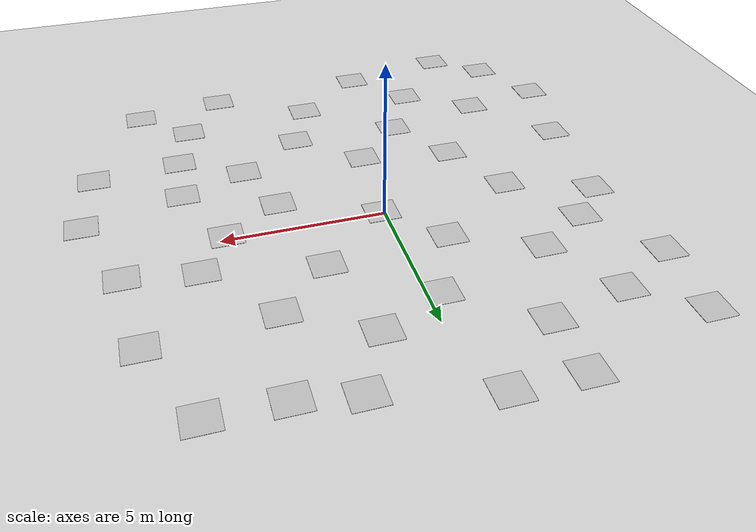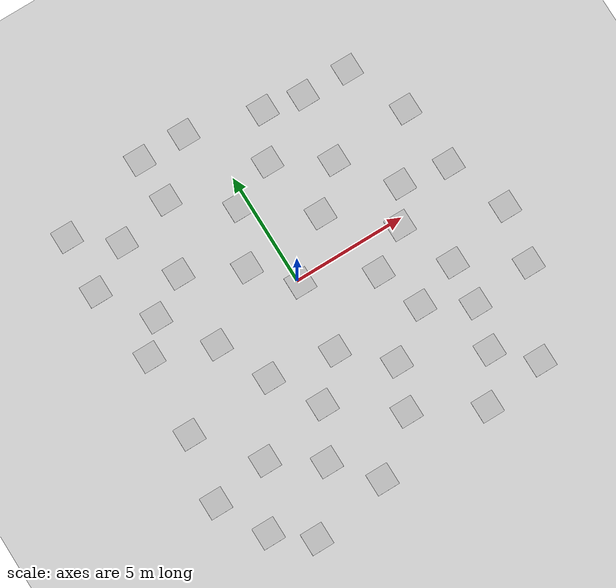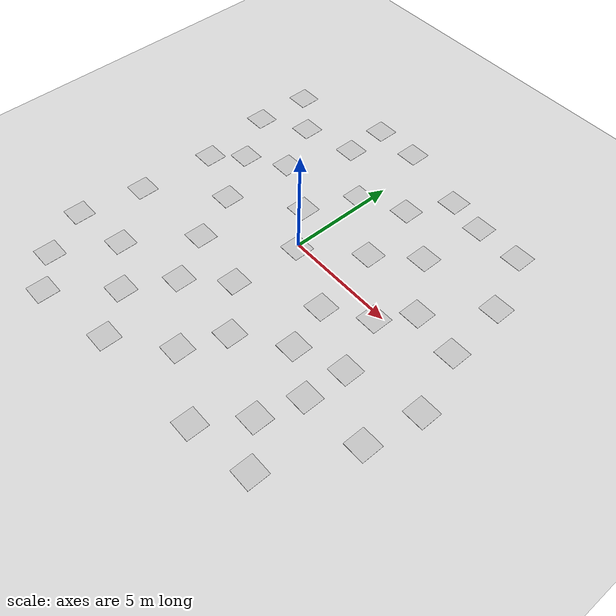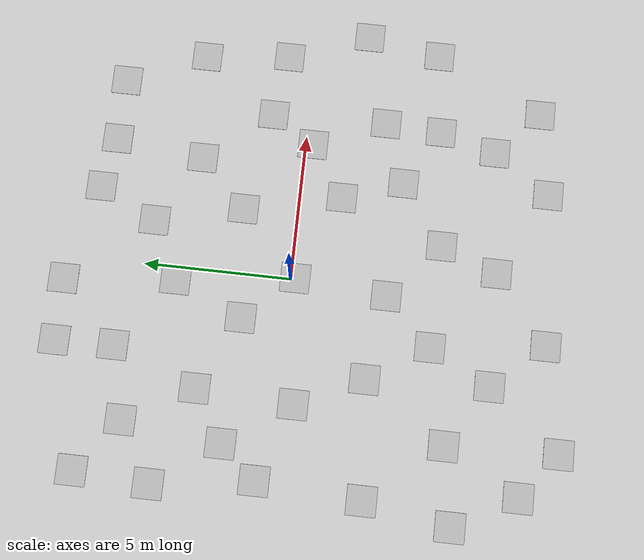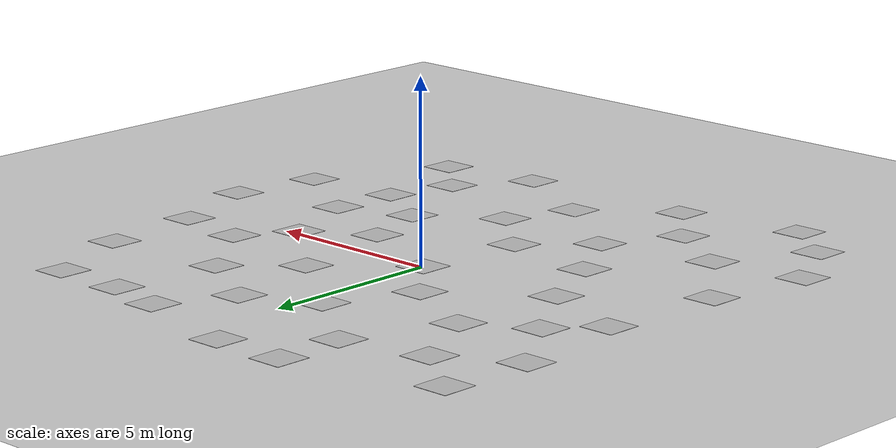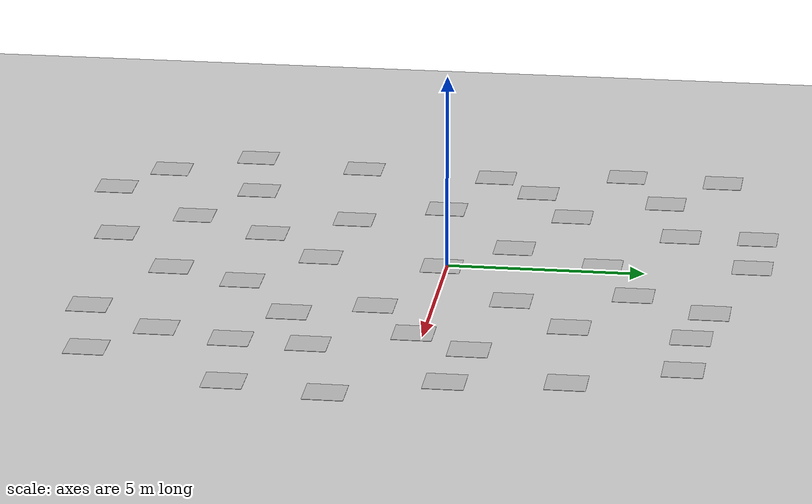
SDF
<sdf version="1.6">
 <world name="default">
  <light name="sun" type="directional">
   <pose>0 0 10 0 -0 0</pose>
   <diffuse>0.8 0.8 0.8 1</diffuse>
   <specular>0.1 0.1 0.1 1</specular>
   <attenuation>
    <range>1000</range>
    <constant>0.9</constant>
    <linear>0.01</linear>
    <quadratic>0.001</quadratic>
   </attenuation>
   <direction>-0.5 0.5 -1</direction>
  </light>
  <model name="ground_plane">
   <static>1</static>
   <link name="link">
    <collision name="collision">
     <geometry><plane><normal>0 0 1</normal><size>100 100</size></plane></geometry>
     <surface><friction><ode><mu>100</mu><mu2>50</mu2></ode></friction></surface>
    </collision>
    <visual name="visual">
     <cast_shadows>0</cast_shadows>
     <geometry><plane><normal>0 0 1</normal><size>100 100</size></plane></geometry>
     <material>
      <script><uri>file://media/materials/scripts/gazebo.material</uri><name>Gazebo/Grey</name></script>
     </material>
    </visual>
   </link>
  </model>
  <gravity>0 0 -9.8</gravity>
  <magnetic_field>6e-06 2.3e-05 -4.2e-05</magnetic_field>
  <atmosphere type="adiabatic"/>
  <physics name="default_physics" default="0" type="ode">
   <max_step_size>0.001</max_step_size>
   <real_time_factor>1</real_time_factor>
   <real_time_update_rate>1000</real_time_update_rate>
  </physics>
  <scene><ambient>0.4 0.4 0.4 1</ambient><background>0.7 0.7 0.7 1</background><shadows>1</shadows></scene>
  <spherical_coordinates>
   <surface_model>EARTH_WGS84</surface_model>
   <latitude_deg>0</latitude_deg>
   <longitude_deg>0</longitude_deg>
   <elevation>0</elevation>
   <heading_deg>0</heading_deg>
  </spherical_coordinates>
  <model name="april_tag0">
   <static>1</static>
   <link name="plane">
    <visual name="april_tag_texture">
     <geometry><box><size>1 1 0.01</size></box></geometry>
     <material>
      <script>
       <uri>model://april_tag0/materials/scripts</uri>
       <uri>model://april_tag0/materials/textures</uri>
       <name>AprilTag/M0</name>
      </script>
     </material>
    </visual>
   </link>
   <pose>0.064587 -0.136703 0 0 -0 0</pose>
  </model>
  <model name="april_tag1">
   <static>1</static>
   <link name="plane">
    <visual name="april_tag_texture">
     <geometry><box><size>1 1 0.01</size></box></geometry>
     <material>
      <script>
       <uri>model://april_tag1/materials/scripts</uri>
       <uri>model://april_tag1/materials/textures</uri>
       <name>AprilTag/M1</name>
      </script>
     </material>
    </visual>
   </link>
   <pose>-3.97469 2.78807 0 0 -0 0</pose>
  </model>
  <model name="april_tag10">
   <static>1</static>
   <link name="plane">
    <visual name="april_tag_texture">
     <geometry><box><size>1 1 0.01</size></box></geometry>
     <material>
      <script>
       <uri>model://april_tag10/materials/scripts</uri>
       <uri>model://april_tag10/materials/textures</uri>
       <name>AprilTag/M10</name>
      </script>
     </material>
    </visual>
   </link>
   <pose>-4.16575 -0.526798 0 0 -0 0</pose>
  </model>
  <model name="april_tag100">
   <static>1</static>
   <link name="plane">
    <visual name="april_tag_texture">
     <geometry><box><size>1 1 0.01</size></box></geometry>
     <material>
      <script>
       <uri>model://april_tag100/materials/scripts</uri>
       <uri>model://april_tag100/materials/textures</uri>
       <name>AprilTag/M100</name>
      </script>
     </material>
    </visual>
   </link>
   <pose>-0.416114 3.88667 0 0 -0 0</pose>
  </model>
  <model name="april_tag101">
   <static>1</static>
   <link name="plane">
    <visual name="april_tag_texture">
     <geometry><box><size>1 1 0.01</size></box></geometry>
     <material>
      <script>
       <uri>model://april_tag101/materials/scripts</uri>
       <uri>model://april_tag101/materials/textures</uri>
       <name>AprilTag/M101</name>
      </script>
     </material>
    </visual>
   </link>
   <pose>3.91276 3.48285 0 0 -0 0</pose>
  </model>
  <model name="april_tag102">
   <static>1</static>
   <link name="plane">
    <visual name="april_tag_texture">
     <geometry><box><size>1 1 0.01</size></box></geometry>
     <material>
      <script>
       <uri>model://april_tag102/materials/scripts</uri>
       <uri>model://april_tag102/materials/textures</uri>
       <name>AprilTag/M102</name>
      </script>
     </material>
    </visual>
   </link>
   <pose>4.78359 -0.24416 0 0 -0 0</pose>
  </model>
  <model name="april_tag103">
   <static>1</static>
   <link name="plane">
    <visual name="april_tag_texture">
     <geometry><box><size>1 1 0.01</size></box></geometry>
     <material>
      <script>
       <uri>model://april_tag103/materials/scripts</uri>
       <uri>model://april_tag103/materials/textures</uri>
       <name>AprilTag/M103</name>
      </script>
     </material>
    </visual>
   </link>
   <pose>-3.08026 -2.80327 0 0 -0 0</pose>
  </model>
  <model name="april_tag104">
   <static>1</static>
   <link name="plane">
    <visual name="april_tag_texture">
     <geometry><box><size>1 1 0.01</size></box></geometry>
     <material>
      <script>
       <uri>model://april_tag104/materials/scripts</uri>
       <uri>model://april_tag104/materials/textures</uri>
       <name>AprilTag/M104</name>
      </script>
     </material>
    </visual>
   </link>
   <pose>-0.215927 -3.2605 0 0 -0 0</pose>
  </model>
  <model name="april_tag105">
   <static>1</static>
   <link name="plane">
    <visual name="april_tag_texture">
     <geometry><box><size>1 1 0.01</size></box></geometry>
     <material>
      <script>
       <uri>model://april_tag105/materials/scripts</uri>
       <uri>model://april_tag105/materials/textures</uri>
       <name>AprilTag/M105</name>
      </script>
     </material>
    </visual>
   </link>
   <pose>3.73687 -3.47963 0 0 -0 0</pose>
  </model>
  <model name="april_tag106">
   <static>1</static>
   <link name="plane">
    <visual name="april_tag_texture">
     <geometry><box><size>1 1 0.01</size></box></geometry>
     <material>
      <script>
       <uri>model://april_tag106/materials/scripts</uri>
       <uri>model://april_tag106/materials/textures</uri>
       <name>AprilTag/M106</name>
      </script>
     </material>
    </visual>
   </link>
   <pose>-2.87254 7.66944 0 0 -0 0</pose>
  </model>
  <model name="april_tag107">
   <static>1</static>
   <link name="plane">
    <visual name="april_tag_texture">
     <geometry><box><size>1 1 0.01</size></box></geometry>
     <material>
      <script>
       <uri>model://april_tag107/materials/scripts</uri>
       <uri>model://april_tag107/materials/textures</uri>
       <name>AprilTag/M107</name>
      </script>
     </material>
    </visual>
   </link>
   <pose>-7.07158 6.47948 0 0 -0 0</pose>
  </model>
  <model name="april_tag108">
   <static>1</static>
   <link name="plane">
    <visual name="april_tag_texture">
     <geometry><box><size>1 1 0.01</size></box></geometry>
     <material>
      <script>
       <uri>model://april_tag108/materials/scripts</uri>
       <uri>model://april_tag108/materials/textures</uri>
       <name>AprilTag/M108</name>
      </script>
     </material>
    </visual>
   </link>
   <pose>-7.23535 3.92302 0 0 -0 0</pose>
  </model>
  <model name="april_tag109">
   <static>1</static>
   <link name="plane">
    <visual name="april_tag_texture">
     <geometry><box><size>1 1 0.01</size></box></geometry>
     <material>
      <script>
       <uri>model://april_tag109/materials/scripts</uri>
       <uri>model://april_tag109/materials/textures</uri>
       <name>AprilTag/M109</name>
      </script>
     </material>
    </visual>
   </link>
   <pose>-6.76457 0.477326 0 0 -0 0</pose>
  </model>
  <model name="april_tag11_0">
   <static>1</static>
   <link name="plane">
    <visual name="april_tag_texture">
     <geometry><box><size>1 1 0.01</size></box></geometry>
     <material>
      <script>
       <uri>model://april_tag11/materials/scripts</uri>
       <uri>model://april_tag11/materials/textures</uri>
       <name>AprilTag/M11</name>
      </script>
     </material>
    </visual>
   </link>
   <pose>2.53774 6.82408 0 0 -0 0</pose>
  </model>
  <model name="april_tag110">
   <static>1</static>
   <link name="plane">
    <visual name="april_tag_texture">
     <geometry><box><size>1 1 0.01</size></box></geometry>
     <material>
      <script>
       <uri>model://april_tag110/materials/scripts</uri>
       <uri>model://april_tag110/materials/textures</uri>
       <name>AprilTag/M110</name>
      </script>
     </material>
    </visual>
   </link>
   <pose>7.56231 3.77683 0 0 -0 0</pose>
  </model>
  <model name="april_tag112">
   <static>1</static>
   <link name="plane">
    <visual name="april_tag_texture">
     <geometry><box><size>1 1 0.01</size></box></geometry>
     <material>
      <script>
       <uri>model://april_tag112/materials/scripts</uri>
       <uri>model://april_tag112/materials/textures</uri>
       <name>AprilTag/M112</name>
      </script>
     </material>
    </visual>
   </link>
   <pose>5.70556 1.22479 0 0 -0 0</pose>
  </model>
  <model name="april_tag113">
   <static>1</static>
   <link name="plane">
    <visual name="april_tag_texture">
     <geometry><box><size>1 1 0.01</size></box></geometry>
     <material>
      <script>
       <uri>model://april_tag113/materials/scripts</uri>
       <uri>model://april_tag113/materials/textures</uri>
       <name>AprilTag/M113</name>
      </script>
     </material>
    </visual>
   </link>
   <pose>-7.03148 -3.09042 0 0 -0 0</pose>
  </model>
  <model name="april_tag114">
   <static>1</static>
   <link name="plane">
    <visual name="april_tag_texture">
     <geometry><box><size>1 1 0.01</size></box></geometry>
     <material>
      <script>
       <uri>model://april_tag114/materials/scripts</uri>
       <uri>model://april_tag114/materials/textures</uri>
       <name>AprilTag/M114</name>
      </script>
     </material>
    </visual>
   </link>
   <pose>-7.56499 -6.03468 0 0 -0 0</pose>
  </model>
  <model name="april_tag115_0">
   <static>1</static>
   <link name="plane">
    <visual name="april_tag_texture">
     <geometry><box><size>1 1 0.01</size></box></geometry>
     <material>
      <script>
       <uri>model://april_tag115/materials/scripts</uri>
       <uri>model://april_tag115/materials/textures</uri>
       <name>AprilTag/M115</name>
      </script>
     </material>
    </visual>
   </link>
   <pose>-2.88425 -6.96188 0 0 -0 0</pose>
  </model>
  <model name="april_tag117">
   <static>1</static>
   <link name="plane">
    <visual name="april_tag_texture">
     <geometry><box><size>1 1 0.01</size></box></geometry>
     <material>
      <script>
       <uri>model://april_tag117/materials/scripts</uri>
       <uri>model://april_tag117/materials/textures</uri>
       <name>AprilTag/M117</name>
      </script>
     </material>
    </visual>
   </link>
   <pose>-4.98662 -5.60421 0 0 -0 0</pose>
  </model>
  <model name="april_tag116">
   <static>1</static>
   <link name="plane">
    <visual name="april_tag_texture">
     <geometry><box><size>1 1 0.01</size></box></geometry>
     <material>
      <script>
       <uri>model://april_tag116/materials/scripts</uri>
       <uri>model://april_tag116/materials/textures</uri>
       <name>AprilTag/M116</name>
      </script>
     </material>
    </visual>
   </link>
   <pose>0.943478 -6.90862 0 0 -0 0</pose>
  </model>
  <model name="april_tag118_0">
   <static>1</static>
   <link name="plane">
    <visual name="april_tag_texture">
     <geometry><box><size>1 1 0.01</size></box></geometry>
     <material>
      <script>
       <uri>model://april_tag118/materials/scripts</uri>
       <uri>model://april_tag118/materials/textures</uri>
       <name>AprilTag/M118</name>
      </script>
     </material>
    </visual>
   </link>
   <pose>5.15804 -6.53084 0 0 -0 0</pose>
  </model>
  <model name="april_tag119">
   <static>1</static>
   <link name="plane">
    <visual name="april_tag_texture">
     <geometry><box><size>1 1 0.01</size></box></geometry>
     <material>
      <script>
       <uri>model://april_tag119/materials/scripts</uri>
       <uri>model://april_tag119/materials/textures</uri>
       <name>AprilTag/M119</name>
      </script>
     </material>
    </visual>
   </link>
   <pose>8.87246 -1.83001 0 0 -0 0</pose>
  </model>
  <model name="april_tag12">
   <static>1</static>
   <link name="plane">
    <visual name="april_tag_texture">
     <geometry><box><size>1 1 0.01</size></box></geometry>
     <material>
      <script>
       <uri>model://april_tag12/materials/scripts</uri>
       <uri>model://april_tag12/materials/textures</uri>
       <name>AprilTag/M12</name>
      </script>
     </material>
    </visual>
   </link>
   <pose>-1.46747 1.54128 0 0 -0 0</pose>
  </model>
  <model name="april_tag120">
   <static>1</static>
   <link name="plane">
    <visual name="april_tag_texture">
     <geometry><box><size>1 1 0.01</size></box></geometry>
     <material>
      <script>
       <uri>model://april_tag120/materials/scripts</uri>
       <uri>model://april_tag120/materials/textures</uri>
       <name>AprilTag/M120</name>
      </script>
     </material>
    </visual>
   </link>
   <pose>3.0202 -1.43116 0 0 -0 0</pose>
  </model>
  <model name="april_tag121">
   <static>1</static>
   <link name="plane">
    <visual name="april_tag_texture">
     <geometry><box><size>1 1 0.01</size></box></geometry>
     <material>
      <script>
       <uri>model://april_tag121/materials/scripts</uri>
       <uri>model://april_tag121/materials/textures</uri>
       <name>AprilTag/M121</name>
      </script>
     </material>
    </visual>
   </link>
   <pose>-1.79307 -4.87349 0 0 -0 0</pose>
  </model>
  <model name="april_tag122">
   <static>1</static>
   <link name="plane">
    <visual name="april_tag_texture">
     <geometry><box><size>1 1 0.01</size></box></geometry>
     <material>
      <script>
       <uri>model://april_tag122/materials/scripts</uri>
       <uri>model://april_tag122/materials/textures</uri>
       <name>AprilTag/M122</name>
      </script>
     </material>
    </visual>
   </link>
   <pose>-6.39657 -8.18157 0 0 -0 0</pose>
  </model>
  <model name="april_tag123">
   <static>1</static>
   <link name="plane">
    <visual name="april_tag_texture">
     <geometry><box><size>1 1 0.01</size></box></geometry>
     <material>
      <script>
       <uri>model://april_tag123/materials/scripts</uri>
       <uri>model://april_tag123/materials/textures</uri>
       <name>AprilTag/M123</name>
      </script>
     </material>
    </visual>
   </link>
   <pose>-1.34142 -8.73129 0 0 -0 0</pose>
  </model>
  <model name="april_tag124_0">
   <static>1</static>
   <link name="plane">
    <visual name="april_tag_texture">
     <geometry><box><size>1 1 0.01</size></box></geometry>
     <material>
      <script>
       <uri>model://april_tag124/materials/scripts</uri>
       <uri>model://april_tag124/materials/textures</uri>
       <name>AprilTag/M124</name>
      </script>
     </material>
    </visual>
   </link>
   <pose>1.69061 -4.97206 0 0 -0 0</pose>
  </model>
  <model name="april_tag125">
   <static>1</static>
   <link name="plane">
    <visual name="april_tag_texture">
     <geometry><box><size>1 1 0.01</size></box></geometry>
     <material>
      <script>
       <uri>model://april_tag125/materials/scripts</uri>
       <uri>model://april_tag125/materials/textures</uri>
       <name>AprilTag/M125</name>
      </script>
     </material>
    </visual>
   </link>
   <pose>8.43566 -4.32533 0 0 -0 0</pose>
  </model>
  <model name="april_tag126">
   <static>1</static>
   <link name="plane">
    <visual name="april_tag_texture">
     <geometry><box><size>1 1 0.01</size></box></geometry>
     <material>
      <script>
       <uri>model://april_tag126/materials/scripts</uri>
       <uri>model://april_tag126/materials/textures</uri>
       <name>AprilTag/M126</name>
      </script>
     </material>
    </visual>
   </link>
   <pose>2.2716 1.8782 0 0 -0 0</pose>
  </model>
  <model name="april_tag127">
   <static>1</static>
   <link name="plane">
    <visual name="april_tag_texture">
     <geometry><box><size>1 1 0.01</size></box></geometry>
     <material>
      <script>
       <uri>model://april_tag127/materials/scripts</uri>
       <uri>model://april_tag127/materials/textures</uri>
       <name>AprilTag/M127</name>
      </script>
     </material>
    </visual>
   </link>
   <pose>-5.26968 5.10824 0 0 -0 0</pose>
  </model>
  <model name="april_tag128">
   <static>1</static>
   <link name="plane">
    <visual name="april_tag_texture">
     <geometry><box><size>1 1 0.01</size></box></geometry>
     <material>
      <script>
       <uri>model://april_tag128/materials/scripts</uri>
       <uri>model://april_tag128/materials/textures</uri>
       <name>AprilTag/M128</name>
      </script>
     </material>
    </visual>
   </link>
   <pose>4.27931 6.49691 0 0 -0 0</pose>
  </model>
  <model name="april_tag129">
   <static>1</static>
   <link name="plane">
    <visual name="april_tag_texture">
     <geometry><box><size>1 1 0.01</size></box></geometry>
     <material>
      <script>
       <uri>model://april_tag129/materials/scripts</uri>
       <uri>model://april_tag129/materials/textures</uri>
       <name>AprilTag/M129</name>
      </script>
     </material>
    </visual>
   </link>
   <pose>6.39883 6.46871 0 0 -0 0</pose>
  </model>
  <model name="april_tag130">
   <static>1</static>
   <link name="plane">
    <visual name="april_tag_texture">
     <geometry><box><size>1 1 0.01</size></box></geometry>
     <material>
      <script>
       <uri>model://april_tag130/materials/scripts</uri>
       <uri>model://april_tag130/materials/textures</uri>
       <name>AprilTag/M130</name>
      </script>
     </material>
    </visual>
   </link>
   <pose>3.85192 -8.45633 0 0 -0 0</pose>
  </model>
  <model name="april_tag13">
   <static>1</static>
   <link name="plane">
    <visual name="april_tag_texture">
     <geometry><box><size>1 1 0.01</size></box></geometry>
     <material>
      <script>
       <uri>model://april_tag13/materials/scripts</uri>
       <uri>model://april_tag13/materials/textures</uri>
       <name>AprilTag/M13</name>
      </script>
     </material>
    </visual>
   </link>
   <pose>5.79934 -2.69298 0 0 -0 0</pose>
  </model>
  <model name="april_tag132">
   <static>1</static>
   <link name="plane">
    <visual name="april_tag_texture">
     <geometry><box><size>1 1 0.01</size></box></geometry>
     <material>
      <script>
       <uri>model://april_tag132/materials/scripts</uri>
       <uri>model://april_tag132/materials/textures</uri>
       <name>AprilTag/M132</name>
      </script>
     </material>
    </visual>
   </link>
   <pose>6.68136 -7.98297 0 0 -0 0</pose>
  </model>
  <model name="april_tag133">
   <static>1</static>
   <link name="plane">
    <visual name="april_tag_texture">
     <geometry><box><size>1 1 0.01</size></box></geometry>
     <material>
      <script>
       <uri>model://april_tag133/materials/scripts</uri>
       <uri>model://april_tag133/materials/textures</uri>
       <name>AprilTag/M133</name>
      </script>
     </material>
    </visual>
   </link>
   <pose>1.5523 4.85626 0 0 -0 0</pose>
  </model>
  <model name="april_tag134">
   <static>1</static>
   <link name="plane">
    <visual name="april_tag_texture">
     <geometry><box><size>1 1 0.01</size></box></geometry>
     <material>
      <script>
       <uri>model://april_tag134/materials/scripts</uri>
       <uri>model://april_tag134/materials/textures</uri>
       <name>AprilTag/M134</name>
      </script>
     </material>
    </visual>
   </link>
   <pose>-2.83049 5.68962 0 0 -0 0</pose>
  </model>
  <model name="april_tag135">
   <static>1</static>
   <link name="plane">
    <visual name="april_tag_texture">
     <geometry><box><size>1 1 0.01</size></box></geometry>
     <material>
      <script>
       <uri>model://april_tag135/materials/scripts</uri>
       <uri>model://april_tag135/materials/textures</uri>
       <name>AprilTag/M135</name>
      </script>
     </material>
    </visual>
   </link>
   <pose>7.85374 0.90172 0 0 -0 0</pose>
  </model>
  <model name="april_tag136">
   <static>1</static>
   <link name="plane">
    <visual name="april_tag_texture">
     <geometry><box><size>1 1 0.01</size></box></geometry>
     <material>
      <script>
       <uri>model://april_tag136/materials/scripts</uri>
       <uri>model://april_tag136/materials/textures</uri>
       <name>AprilTag/M136</name>
      </script>
     </material>
    </visual>
   </link>
   <pose>-4.85579 -9.39615 0 0 -0 0</pose>
  </model>
  <model name="april_tag137">
   <static>1</static>
   <link name="plane">
    <visual name="april_tag_texture">
     <geometry><box><size>1 1 0.01</size></box></geometry>
     <material>
      <script>
       <uri>model://april_tag137/materials/scripts</uri>
       <uri>model://april_tag137/materials/textures</uri>
       <name>AprilTag/M137</name>
      </script>
     </material>
    </visual>
   </link>
   <pose>-5.68998 1.71707 0 0 -0 0</pose>
  </model>
  <model name="april_tag138">
   <static>1</static>
   <link name="plane">
    <visual name="april_tag_texture">
     <geometry><box><size>1 1 0.01</size></box></geometry>
     <material>
      <script>
       <uri>model://april_tag138/materials/scripts</uri>
       <uri>model://april_tag138/materials/textures</uri>
       <name>AprilTag/M138</name>
      </script>
     </material>
    </visual>
   </link>
   <pose>5.68882 -4.61369 0 0 -0 0</pose>
  </model>
  <model name="april_tag139">
   <static>1</static>
   <link name="plane">
    <visual name="april_tag_texture">
     <geometry><box><size>1 1 0.01</size></box></geometry>
     <material>
      <script>
       <uri>model://april_tag139/materials/scripts</uri>
       <uri>model://april_tag139/materials/textures</uri>
       <name>AprilTag/M139</name>
      </script>
     </material>
    </visual>
   </link>
   <pose>-0.76815 7.6642 0 0 -0 0</pose>
  </model>
 </world>
</sdf>
